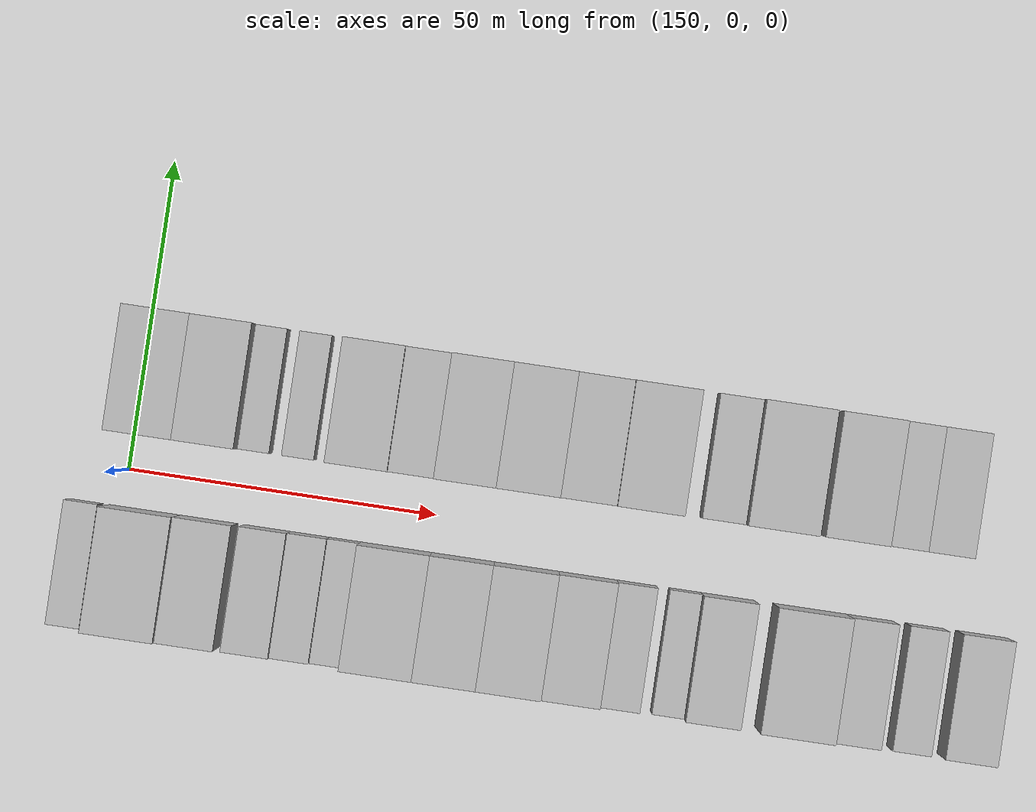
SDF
<sdf version="1.6">
 <world name="default">
  <model name="building_16">
   <static>1</static>
   <pose>151.9929 16.0000 0 0.000000 0.000000 1.570796</pose>
   <link name="link">
    <pose>0 0 12.00 0 0 0</pose>
    <collision name="collision"><geometry><box><size>20.0000 10.8459 24.0000</size></box></geometry></collision>
    <visual name="visual">
     <cast_shadows>0</cast_shadows>
     <geometry><box><size>20.0000 10.8459 24.0000</size></box></geometry>
     <material>
      <script>
       <uri>model://HANNAS_wall/materials/scripts</uri>
       <uri>model://HANNAS_wall/materials/textures</uri>
       <name>vrc/HANNAS_wall</name>
      </script>
     </material>
    </visual>
   </link>
  </model>
  <model name="building_17">
   <static>1</static>
   <pose>162.3633 16.0000 0 0.000000 0.000000 1.570796</pose>
   <link name="link">
    <pose>0 0 12.00 0 0 0</pose>
    <collision name="collision"><geometry><box><size>20.0000 9.8948 24.0000</size></box></geometry></collision>
    <visual name="visual">
     <cast_shadows>0</cast_shadows>
     <geometry><box><size>20.0000 9.8948 24.0000</size></box></geometry>
     <material>
      <script>
       <uri>model://HANNAS_wall/materials/scripts</uri>
       <uri>model://HANNAS_wall/materials/textures</uri>
       <name>vrc/HANNAS_wall</name>
      </script>
     </material>
    </visual>
   </link>
  </model>
  <model name="building_18">
   <static>1</static>
   <pose>169.8428 16.0000 0 0.000000 0.000000 1.570796</pose>
   <link name="link">
    <pose>0 0 6.00 0 0 0</pose>
    <collision name="collision"><geometry><box><size>20.0000 5.0642 12.0000</size></box></geometry></collision>
    <visual name="visual">
     <cast_shadows>0</cast_shadows>
     <geometry><box><size>20.0000 5.0642 12.0000</size></box></geometry>
     <material>
      <script>
       <uri>model://HANNAS_wall/materials/scripts</uri>
       <uri>model://HANNAS_wall/materials/textures</uri>
       <name>vrc/HANNAS_wall</name>
      </script>
     </material>
    </visual>
   </link>
  </model>
  <model name="building_19">
   <static>1</static>
   <pose>176.9640 16.0000 0 0.000000 0.000000 1.570796</pose>
   <link name="link">
    <pose>0 0 6.00 0 0 0</pose>
    <collision name="collision"><geometry><box><size>20.0000 5.1782 12.0000</size></box></geometry></collision>
    <visual name="visual">
     <cast_shadows>0</cast_shadows>
     <geometry><box><size>20.0000 5.1782 12.0000</size></box></geometry>
     <material>
      <script>
       <uri>model://HANNAS_wall/materials/scripts</uri>
       <uri>model://HANNAS_wall/materials/textures</uri>
       <name>vrc/HANNAS_wall</name>
      </script>
     </material>
    </visual>
   </link>
  </model>
  <model name="building_20">
   <static>1</static>
   <pose>186.5565 16.0000 0 0.000000 0.000000 1.570796</pose>
   <link name="link">
    <pose>0 0 10.50 0 0 0</pose>
    <collision name="collision"><geometry><box><size>20.0000 10.0067 21.0000</size></box></geometry></collision>
    <visual name="visual">
     <cast_shadows>0</cast_shadows>
     <geometry><box><size>20.0000 10.0067 21.0000</size></box></geometry>
     <material>
      <script>
       <uri>model://HANNAS_wall/materials/scripts</uri>
       <uri>model://HANNAS_wall/materials/textures</uri>
       <name>vrc/HANNAS_wall</name>
      </script>
     </material>
    </visual>
   </link>
  </model>
  <model name="building_21">
   <static>1</static>
   <pose>195.2621 16.0000 0 0.000000 0.000000 1.570796</pose>
   <link name="link">
    <pose>0 0 9.00 0 0 0</pose>
    <collision name="collision"><geometry><box><size>20.0000 7.4045 18.0000</size></box></geometry></collision>
    <visual name="visual">
     <cast_shadows>0</cast_shadows>
     <geometry><box><size>20.0000 7.4045 18.0000</size></box></geometry>
     <material>
      <script>
       <uri>model://HANNAS_wall/materials/scripts</uri>
       <uri>model://HANNAS_wall/materials/textures</uri>
       <name>vrc/HANNAS_wall</name>
      </script>
     </material>
    </visual>
   </link>
  </model>
  <model name="building_22">
   <static>1</static>
   <pose>203.9252 16.0000 0 0.000000 0.000000 1.570796</pose>
   <link name="link">
    <pose>0 0 12.00 0 0 0</pose>
    <collision name="collision"><geometry><box><size>20.0000 9.9217 24.0000</size></box></geometry></collision>
    <visual name="visual">
     <cast_shadows>0</cast_shadows>
     <geometry><box><size>20.0000 9.9217 24.0000</size></box></geometry>
     <material>
      <script>
       <uri>model://HANNAS_wall/materials/scripts</uri>
       <uri>model://HANNAS_wall/materials/textures</uri>
       <name>vrc/HANNAS_wall</name>
      </script>
     </material>
    </visual>
   </link>
  </model>
  <model name="building_23">
   <static>1</static>
   <pose>214.0041 16.0000 0 0.000000 0.000000 1.570796</pose>
   <link name="link">
    <pose>0 0 12.00 0 0 0</pose>
    <collision name="collision"><geometry><box><size>20.0000 10.2360 24.0000</size></box></geometry></collision>
    <visual name="visual">
     <cast_shadows>0</cast_shadows>
     <geometry><box><size>20.0000 10.2360 24.0000</size></box></geometry>
     <material>
      <script>
       <uri>model://HANNAS_wall/materials/scripts</uri>
       <uri>model://HANNAS_wall/materials/textures</uri>
       <name>vrc/HANNAS_wall</name>
      </script>
     </material>
    </visual>
   </link>
  </model>
  <model name="building_24">
   <static>1</static>
   <pose>223.6348 16.0000 0 0.000000 0.000000 1.570796</pose>
   <link name="link">
    <pose>0 0 10.50 0 0 0</pose>
    <collision name="collision"><geometry><box><size>20.0000 9.0255 21.0000</size></box></geometry></collision>
    <visual name="visual">
     <cast_shadows>0</cast_shadows>
     <geometry><box><size>20.0000 9.0255 21.0000</size></box></geometry>
     <material>
      <script>
       <uri>model://HANNAS_wall/materials/scripts</uri>
       <uri>model://HANNAS_wall/materials/textures</uri>
       <name>vrc/HANNAS_wall</name>
      </script>
     </material>
    </visual>
   </link>
  </model>
  <model name="building_25">
   <static>1</static>
   <pose>233.4918 16.0000 0 0.000000 0.000000 1.570796</pose>
   <link name="link">
    <pose>0 0 12.00 0 0 0</pose>
    <collision name="collision"><geometry><box><size>20.0000 10.6884 24.0000</size></box></geometry></collision>
    <visual name="visual">
     <cast_shadows>0</cast_shadows>
     <geometry><box><size>20.0000 10.6884 24.0000</size></box></geometry>
     <material>
      <script>
       <uri>model://HANNAS_wall/materials/scripts</uri>
       <uri>model://HANNAS_wall/materials/textures</uri>
       <name>vrc/HANNAS_wall</name>
      </script>
     </material>
    </visual>
   </link>
  </model>
  <model name="building_26">
   <static>1</static>
   <pose>245.3393 16.0000 0 0.000000 0.000000 1.570796</pose>
   <link name="link">
    <pose>0 0 7.50 0 0 0</pose>
    <collision name="collision"><geometry><box><size>20.0000 7.0066 15.0000</size></box></geometry></collision>
    <visual name="visual">
     <cast_shadows>0</cast_shadows>
     <geometry><box><size>20.0000 7.0066 15.0000</size></box></geometry>
     <material>
      <script>
       <uri>model://HANNAS_wall/materials/scripts</uri>
       <uri>model://HANNAS_wall/materials/textures</uri>
       <name>vrc/HANNAS_wall</name>
      </script>
     </material>
    </visual>
   </link>
  </model>
  <model name="building_27">
   <static>1</static>
   <pose>254.5507 16.0000 0 0.000000 0.000000 1.570796</pose>
   <link name="link">
    <pose>0 0 12.00 0 0 0</pose>
    <collision name="collision"><geometry><box><size>20.0000 11.4161 24.0000</size></box></geometry></collision>
    <visual name="visual">
     <cast_shadows>0</cast_shadows>
     <geometry><box><size>20.0000 11.4161 24.0000</size></box></geometry>
     <material>
      <script>
       <uri>model://HANNAS_wall/materials/scripts</uri>
       <uri>model://HANNAS_wall/materials/textures</uri>
       <name>vrc/HANNAS_wall</name>
      </script>
     </material>
    </visual>
   </link>
  </model>
  <model name="building_28">
   <static>1</static>
   <pose>266.4368 16.0000 0 0.000000 0.000000 1.570796</pose>
   <link name="link">
    <pose>0 0 10.50 0 0 0</pose>
    <collision name="collision"><geometry><box><size>20.0000 10.3563 21.0000</size></box></geometry></collision>
    <visual name="visual">
     <cast_shadows>0</cast_shadows>
     <geometry><box><size>20.0000 10.3563 21.0000</size></box></geometry>
     <material>
      <script>
       <uri>model://HANNAS_wall/materials/scripts</uri>
       <uri>model://HANNAS_wall/materials/textures</uri>
       <name>vrc/HANNAS_wall</name>
      </script>
     </material>
    </visual>
   </link>
  </model>
  <model name="building_29">
   <static>1</static>
   <pose>274.8132 16.0000 0 0.000000 0.000000 1.570796</pose>
   <link name="link">
    <pose>0 0 7.50 0 0 0</pose>
    <collision name="collision"><geometry><box><size>20.0000 6.3964 15.0000</size></box></geometry></collision>
    <visual name="visual">
     <cast_shadows>0</cast_shadows>
     <geometry><box><size>20.0000 6.3964 15.0000</size></box></geometry>
     <material>
      <script>
       <uri>model://HANNAS_wall/materials/scripts</uri>
       <uri>model://HANNAS_wall/materials/textures</uri>
       <name>vrc/HANNAS_wall</name>
      </script>
     </material>
    </visual>
   </link>
  </model>
  <model name="building_30">
   <static>1</static>
   <pose>281.7585 16.0000 0 0.000000 0.000000 1.570796</pose>
   <link name="link">
    <pose>0 0 7.50 0 0 0</pose>
    <collision name="collision"><geometry><box><size>20.0000 7.4942 15.0000</size></box></geometry></collision>
    <visual name="visual">
     <cast_shadows>0</cast_shadows>
     <geometry><box><size>20.0000 7.4942 15.0000</size></box></geometry>
     <material>
      <script>
       <uri>model://HANNAS_wall/materials/scripts</uri>
       <uri>model://HANNAS_wall/materials/textures</uri>
       <name>vrc/HANNAS_wall</name>
      </script>
     </material>
    </visual>
   </link>
  </model>
  <model name="building_45">
   <static>1</static>
   <pose>143.9192 -16.0000 0 0.000000 0.000000 1.570796</pose>
   <link name="link">
    <pose>0 0 6.00 0 0 0</pose>
    <collision name="collision"><geometry><box><size>20.0000 5.4511 12.0000</size></box></geometry></collision>
    <visual name="visual">
     <cast_shadows>0</cast_shadows>
     <geometry><box><size>20.0000 5.4511 12.0000</size></box></geometry>
     <material>
      <script>
       <uri>model://HANNAS_wall/materials/scripts</uri>
       <uri>model://HANNAS_wall/materials/textures</uri>
       <name>vrc/HANNAS_wall</name>
      </script>
     </material>
    </visual>
   </link>
  </model>
  <model name="building_46">
   <static>1</static>
   <pose>153.4588 -16.0000 0 0.000000 0.000000 1.570796</pose>
   <link name="link">
    <pose>0 0 12.00 0 0 0</pose>
    <collision name="collision"><geometry><box><size>20.0000 11.6281 24.0000</size></box></geometry></collision>
    <visual name="visual">
     <cast_shadows>0</cast_shadows>
     <geometry><box><size>20.0000 11.6281 24.0000</size></box></geometry>
     <material>
      <script>
       <uri>model://HANNAS_wall/materials/scripts</uri>
       <uri>model://HANNAS_wall/materials/textures</uri>
       <name>vrc/HANNAS_wall</name>
      </script>
     </material>
    </visual>
   </link>
  </model>
  <model name="building_47">
   <static>1</static>
   <pose>163.9425 -16.0000 0 0.000000 0.000000 1.570796</pose>
   <link name="link">
    <pose>0 0 10.50 0 0 0</pose>
    <collision name="collision"><geometry><box><size>20.0000 9.3392 21.0000</size></box></geometry></collision>
    <visual name="visual">
     <cast_shadows>0</cast_shadows>
     <geometry><box><size>20.0000 9.3392 21.0000</size></box></geometry>
     <material>
      <script>
       <uri>model://HANNAS_wall/materials/scripts</uri>
       <uri>model://HANNAS_wall/materials/textures</uri>
       <name>vrc/HANNAS_wall</name>
      </script>
     </material>
    </visual>
   </link>
  </model>
  <model name="building_48">
   <static>1</static>
   <pose>173.4148 -16.0000 0 0.000000 0.000000 1.570796</pose>
   <link name="link">
    <pose>0 0 9.00 0 0 0</pose>
    <collision name="collision"><geometry><box><size>20.0000 7.6054 18.0000</size></box></geometry></collision>
    <visual name="visual">
     <cast_shadows>0</cast_shadows>
     <geometry><box><size>20.0000 7.6054 18.0000</size></box></geometry>
     <material>
      <script>
       <uri>model://HANNAS_wall/materials/scripts</uri>
       <uri>model://HANNAS_wall/materials/textures</uri>
       <name>vrc/HANNAS_wall</name>
      </script>
     </material>
    </visual>
   </link>
  </model>
  <model name="building_49">
   <static>1</static>
   <pose>180.3873 -16.0000 0 0.000000 0.000000 1.570796</pose>
   <link name="link">
    <pose>0 0 7.50 0 0 0</pose>
    <collision name="collision"><geometry><box><size>20.0000 6.3397 15.0000</size></box></geometry></collision>
    <visual name="visual">
     <cast_shadows>0</cast_shadows>
     <geometry><box><size>20.0000 6.3397 15.0000</size></box></geometry>
     <material>
      <script>
       <uri>model://HANNAS_wall/materials/scripts</uri>
       <uri>model://HANNAS_wall/materials/textures</uri>
       <name>vrc/HANNAS_wall</name>
      </script>
     </material>
    </visual>
   </link>
  </model>
  <model name="building_50">
   <static>1</static>
   <pose>186.0961 -16.0000 0 0.000000 0.000000 1.570796</pose>
   <link name="link">
    <pose>0 0 6.00 0 0 0</pose>
    <collision name="collision"><geometry><box><size>20.0000 5.0779 12.0000</size></box></geometry></collision>
    <visual name="visual">
     <cast_shadows>0</cast_shadows>
     <geometry><box><size>20.0000 5.0779 12.0000</size></box></geometry>
     <material>
      <script>
       <uri>model://HANNAS_wall/materials/scripts</uri>
       <uri>model://HANNAS_wall/materials/textures</uri>
       <name>vrc/HANNAS_wall</name>
      </script>
     </material>
    </visual>
   </link>
  </model>
  <model name="building_51">
   <static>1</static>
   <pose>194.4122 -16.0000 0 0.000000 0.000000 1.570796</pose>
   <link name="link">
    <pose>0 0 12.00 0 0 0</pose>
    <collision name="collision"><geometry><box><size>20.0000 11.5542 24.0000</size></box></geometry></collision>
    <visual name="visual">
     <cast_shadows>0</cast_shadows>
     <geometry><box><size>20.0000 11.5542 24.0000</size></box></geometry>
     <material>
      <script>
       <uri>model://HANNAS_wall/materials/scripts</uri>
       <uri>model://HANNAS_wall/materials/textures</uri>
       <name>vrc/HANNAS_wall</name>
      </script>
     </material>
    </visual>
   </link>
  </model>
  <model name="building_52">
   <static>1</static>
   <pose>205.2578 -16.0000 0 0.000000 0.000000 1.570796</pose>
   <link name="link">
    <pose>0 0 12.00 0 0 0</pose>
    <collision name="collision"><geometry><box><size>20.0000 10.1370 24.0000</size></box></geometry></collision>
    <visual name="visual">
     <cast_shadows>0</cast_shadows>
     <geometry><box><size>20.0000 10.1370 24.0000</size></box></geometry>
     <material>
      <script>
       <uri>model://HANNAS_wall/materials/scripts</uri>
       <uri>model://HANNAS_wall/materials/textures</uri>
       <name>vrc/HANNAS_wall</name>
      </script>
     </material>
    </visual>
   </link>
  </model>
  <model name="building_53">
   <static>1</static>
   <pose>215.5491 -16.0000 0 0.000000 0.000000 1.570796</pose>
   <link name="link">
    <pose>0 0 12.00 0 0 0</pose>
    <collision name="collision"><geometry><box><size>20.0000 10.4456 24.0000</size></box></geometry></collision>
    <visual name="visual">
     <cast_shadows>0</cast_shadows>
     <geometry><box><size>20.0000 10.4456 24.0000</size></box></geometry>
     <material>
      <script>
       <uri>model://HANNAS_wall/materials/scripts</uri>
       <uri>model://HANNAS_wall/materials/textures</uri>
       <name>vrc/HANNAS_wall</name>
      </script>
     </material>
    </visual>
   </link>
  </model>
  <model name="building_54">
   <static>1</static>
   <pose>225.4769 -16.0000 0 0.000000 0.000000 1.570796</pose>
   <link name="link">
    <pose>0 0 10.50 0 0 0</pose>
    <collision name="collision"><geometry><box><size>20.0000 9.4102 21.0000</size></box></geometry></collision>
    <visual name="visual">
     <cast_shadows>0</cast_shadows>
     <geometry><box><size>20.0000 9.4102 21.0000</size></box></geometry>
     <material>
      <script>
       <uri>model://HANNAS_wall/materials/scripts</uri>
       <uri>model://HANNAS_wall/materials/textures</uri>
       <name>vrc/HANNAS_wall</name>
      </script>
     </material>
    </visual>
   </link>
  </model>
  <model name="building_55">
   <static>1</static>
   <pose>233.3865 -16.0000 0 0.000000 0.000000 1.570796</pose>
   <link name="link">
    <pose>0 0 7.50 0 0 0</pose>
    <collision name="collision"><geometry><box><size>20.0000 6.4090 15.0000</size></box></geometry></collision>
    <visual name="visual">
     <cast_shadows>0</cast_shadows>
     <geometry><box><size>20.0000 6.4090 15.0000</size></box></geometry>
     <material>
      <script>
       <uri>model://HANNAS_wall/materials/scripts</uri>
       <uri>model://HANNAS_wall/materials/textures</uri>
       <name>vrc/HANNAS_wall</name>
      </script>
     </material>
    </visual>
   </link>
  </model>
  <model name="building_56">
   <static>1</static>
   <pose>241.1770 -16.0000 0 0.000000 0.000000 1.570796</pose>
   <link name="link">
    <pose>0 0 6.00 0 0 0</pose>
    <collision name="collision"><geometry><box><size>20.0000 5.1718 12.0000</size></box></geometry></collision>
    <visual name="visual">
     <cast_shadows>0</cast_shadows>
     <geometry><box><size>20.0000 5.1718 12.0000</size></box></geometry>
     <material>
      <script>
       <uri>model://HANNAS_wall/materials/scripts</uri>
       <uri>model://HANNAS_wall/materials/textures</uri>
       <name>vrc/HANNAS_wall</name>
      </script>
     </material>
    </visual>
   </link>
  </model>
  <model name="building_57">
   <static>1</static>
   <pose>248.1523 -16.0000 0 0.000000 0.000000 1.570796</pose>
   <link name="link">
    <pose>0 0 10.50 0 0 0</pose>
    <collision name="collision"><geometry><box><size>20.0000 8.7788 21.0000</size></box></geometry></collision>
    <visual name="visual">
     <cast_shadows>0</cast_shadows>
     <geometry><box><size>20.0000 8.7788 21.0000</size></box></geometry>
     <material>
      <script>
       <uri>model://HANNAS_wall/materials/scripts</uri>
       <uri>model://HANNAS_wall/materials/textures</uri>
       <name>vrc/HANNAS_wall</name>
      </script>
     </material>
    </visual>
   </link>
  </model>
  <model name="building_58">
   <static>1</static>
   <pose>261.4947 -16.0000 0 0.000000 0.000000 1.570796</pose>
   <link name="link">
    <pose>0 0 12.00 0 0 0</pose>
    <collision name="collision"><geometry><box><size>20.0000 11.9060 24.0000</size></box></geometry></collision>
    <visual name="visual">
     <cast_shadows>0</cast_shadows>
     <geometry><box><size>20.0000 11.9060 24.0000</size></box></geometry>
     <material>
      <script>
       <uri>model://HANNAS_wall/materials/scripts</uri>
       <uri>model://HANNAS_wall/materials/textures</uri>
       <name>vrc/HANNAS_wall</name>
      </script>
     </material>
    </visual>
   </link>
  </model>
  <model name="building_59">
   <static>1</static>
   <pose>271.2302 -16.0000 0 0.000000 0.000000 1.570796</pose>
   <link name="link">
    <pose>0 0 9.00 0 0 0</pose>
    <collision name="collision"><geometry><box><size>20.0000 7.5649 18.0000</size></box></geometry></collision>
    <visual name="visual">
     <cast_shadows>0</cast_shadows>
     <geometry><box><size>20.0000 7.5649 18.0000</size></box></geometry>
     <material>
      <script>
       <uri>model://HANNAS_wall/materials/scripts</uri>
       <uri>model://HANNAS_wall/materials/textures</uri>
       <name>vrc/HANNAS_wall</name>
      </script>
     </material>
    </visual>
   </link>
  </model>
  <model name="building_60">
   <static>1</static>
   <pose>280.1216 -16.0000 0 0.000000 0.000000 1.570796</pose>
   <link name="link">
    <pose>0 0 7.50 0 0 0</pose>
    <collision name="collision"><geometry><box><size>20.0000 6.2180 15.0000</size></box></geometry></collision>
    <visual name="visual">
     <cast_shadows>0</cast_shadows>
     <geometry><box><size>20.0000 6.2180 15.0000</size></box></geometry>
     <material>
      <script>
       <uri>model://HANNAS_wall/materials/scripts</uri>
       <uri>model://HANNAS_wall/materials/textures</uri>
       <name>vrc/HANNAS_wall</name>
      </script>
     </material>
    </visual>
   </link>
  </model>
  <model name="building_61">
   <static>1</static>
   <pose>289.4079 -16.0000 0 0.000000 0.000000 1.570796</pose>
   <link name="link">
    <pose>0 0 9.00 0 0 0</pose>
    <collision name="collision"><geometry><box><size>20.0000 8.3545 18.0000</size></box></geometry></collision>
    <visual name="visual">
     <cast_shadows>0</cast_shadows>
     <geometry><box><size>20.0000 8.3545 18.0000</size></box></geometry>
     <material>
      <script>
       <uri>model://HANNAS_wall/materials/scripts</uri>
       <uri>model://HANNAS_wall/materials/textures</uri>
       <name>vrc/HANNAS_wall</name>
      </script>
     </material>
    </visual>
   </link>
  </model>
 </world>
</sdf>
